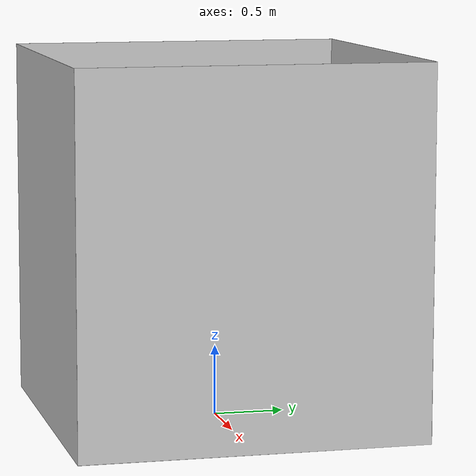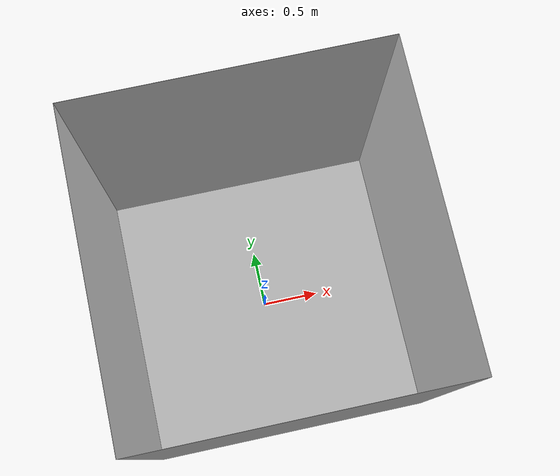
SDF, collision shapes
<?xml version='1.0'?>
<sdf version='1.8'>
  <model name='arena_terrain'>
    <static>1</static>
    <link name="link">
      <collision name="floor_collision">
        <geometry>
          <plane>
            <normal>0 0 1</normal>
            <size>2.4384 2.4384</size>
          </plane>
        </geometry>
        <surface>
          <friction>
            <ode>
              <mu>100</mu>
              <mu2>50</mu2>
            </ode>
          </friction>
        </surface>
      </collision>

      <!-- North wall -->
      <collision name="wall_north">
        <pose>0 1.2192 1.3 0 0 0</pose>
        <geometry>
          <plane>
            <normal>0 -1 0</normal>
            <size>2.4384 2.6</size>
          </plane>
        </geometry>
      </collision>

      <!-- South wall -->
      <collision name="wall_south">
        <pose>0 -1.2192 1.3 0 0 0</pose>
        <geometry>
          <plane>
            <normal>0 1 0</normal>
            <size>2.4384 2.6</size>
          </plane>
        </geometry>
      </collision>

      <!-- East wall -->
      <collision name="wall_east">
        <pose>1.2192 0 1.3 1.57 0 0</pose>
        <geometry>
          <plane>
            <normal>-1 0 0</normal>
            <size>2.4384 2.6</size>
          </plane>
        </geometry>
      </collision>

      <!-- West wall -->
      <collision name="wall_west">
        <pose>-1.2192 0 1.3 1.57 0 0</pose>
        <geometry>
          <plane>
            <normal>1 0 0</normal>
            <size>2.4384 2.6</size>
          </plane>
        </geometry>
      </collision>

      <visual name="visual">
        <cast_shadows>false</cast_shadows>
        <geometry>
          <mesh>
            <uri>model://arena_terrain/meshes/arena_terrain.dae</uri>
          </mesh>
        </geometry>
      </visual>
    </link>
  </model>
</sdf>
